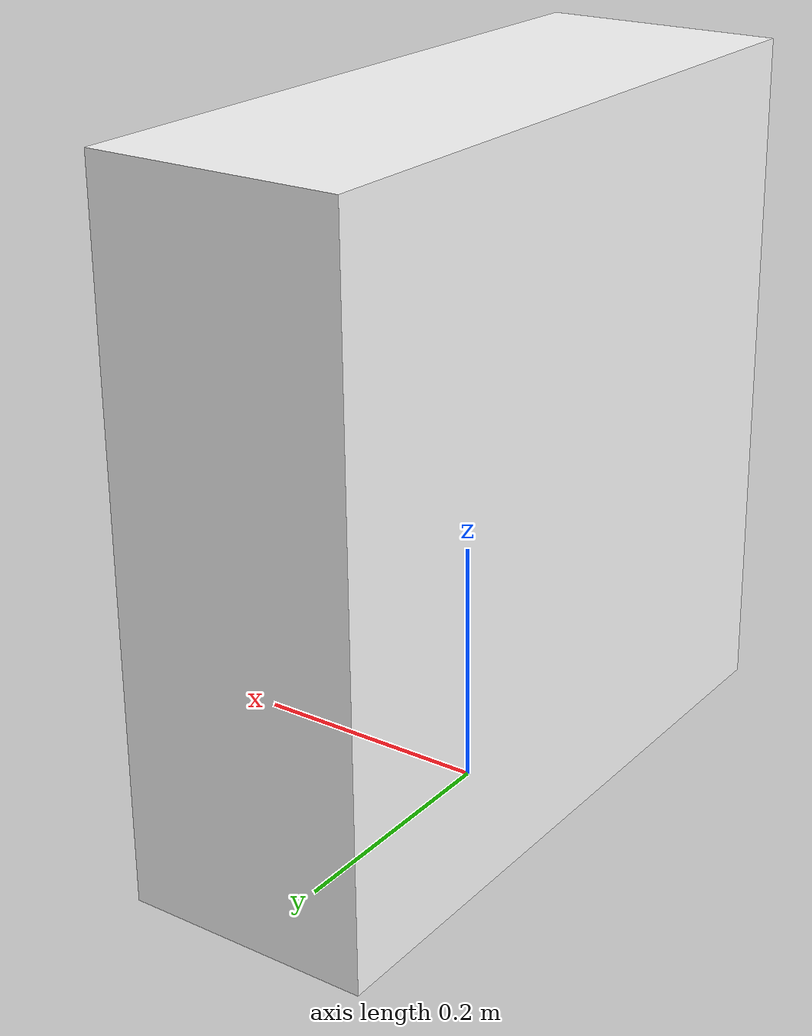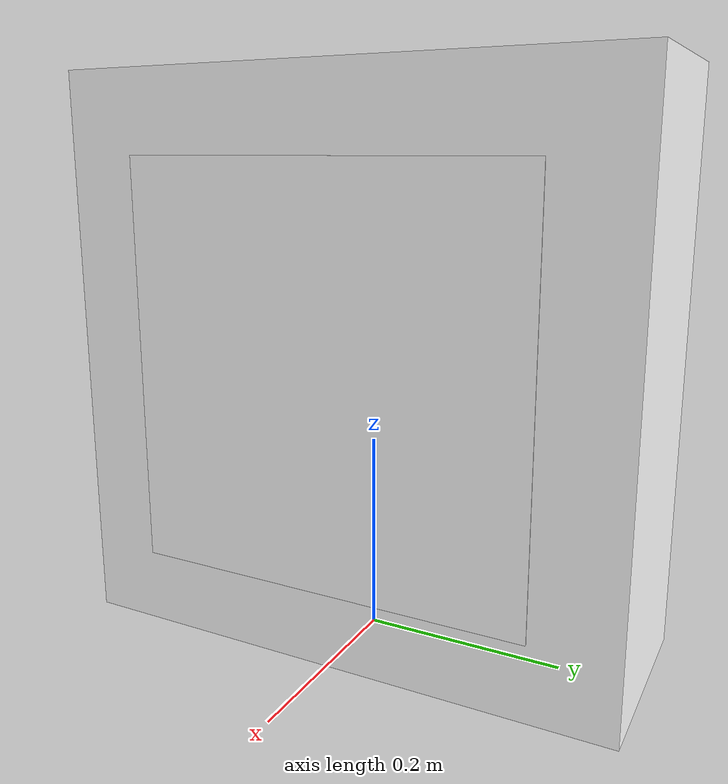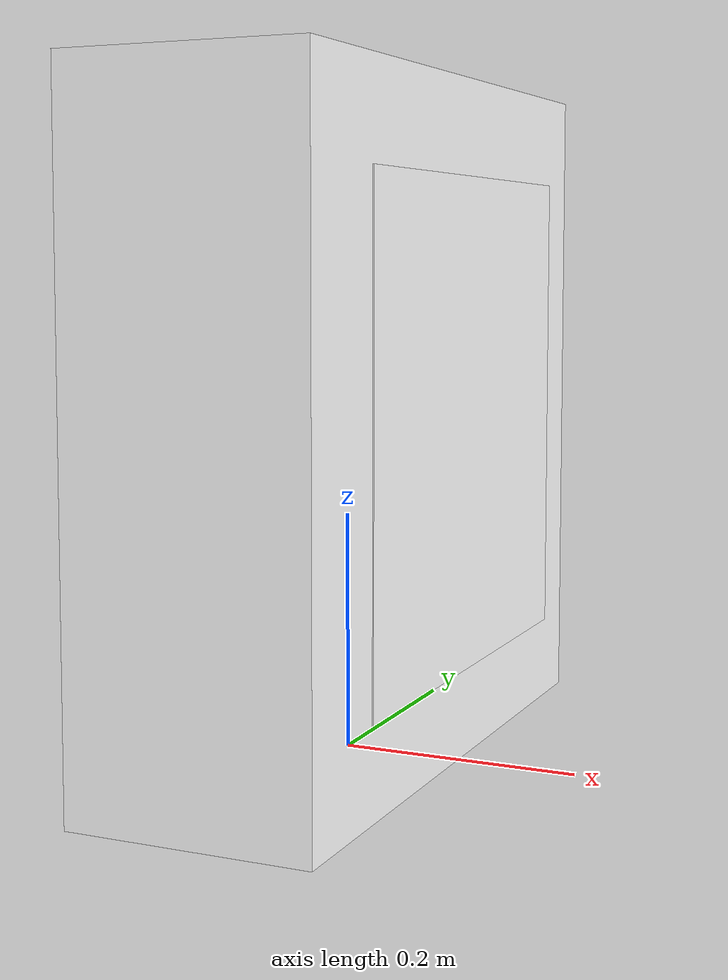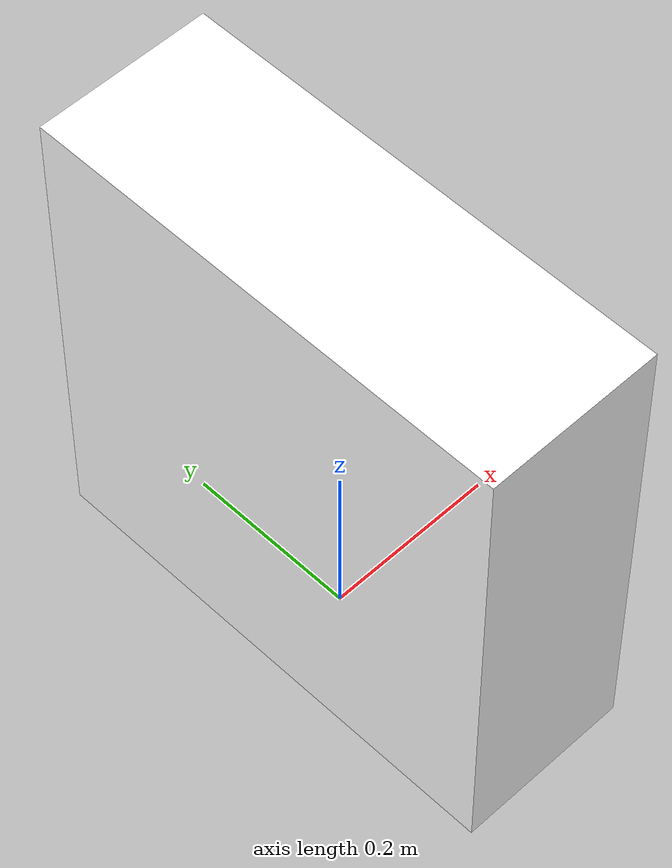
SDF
<?xml version="1.0"?>
<sdf version="1.8">
  <model name="aruco_5">
    <static>true</static>
    <link name="link">
      <visual name="board_visual">
        <pose>0.0 0 0.28 0 0 0</pose>
        <geometry>
          <box>
            <size>0.2 0.56 0.56</size>
          </box>
        </geometry>
        <material>
          <ambient>1 1 1 1</ambient>
          <diffuse>1 1 1 1</diffuse>
        </material>
      </visual>
      <collision name="board_collision">
        <pose>0.0 0 0.28 0 0 0</pose>
        <geometry>
          <box>
            <size>0.2 0.56 0.56</size>
          </box>
        </geometry>
      </collision>

      <visual name="marker_visual">
        <pose>0.11 0 0.28 0 0 0</pose>
        <geometry>
          <box>
            <size>0.001 0.4 0.4</size>
          </box>
        </geometry>
        <material>
          <diffuse>1 1 1 1</diffuse>
          <pbr>
            <metal>
              <albedo_map>textures/marker_65.png</albedo_map>
            </metal>
          </pbr>
        </material>
      </visual>
    </link>
  </model>
</sdf>
